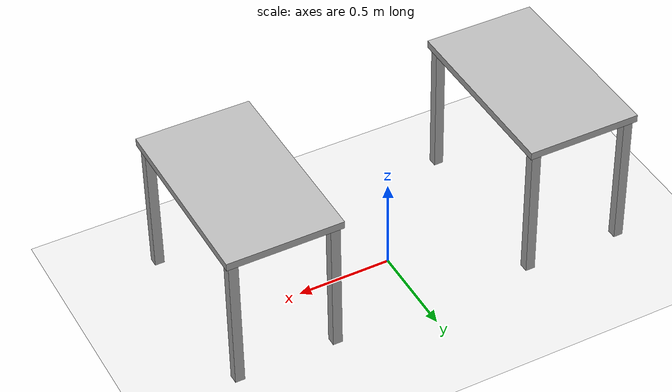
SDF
<?xml version="1.0" ?>
<sdf version="1.8">
  <world name="dualarm_world">
    <!-- Inline directional light ("sun") -->
    <light name="sun" type="directional">
      <cast_shadows>true</cast_shadows>
      <pose>0 0 10 0 0 0</pose>
      <diffuse>1 1 1 1</diffuse>
      <specular>0.2 0.2 0.2 1</specular>
      <attenuation><range>100</range><constant>0.9</constant><linear>0.01</linear><quadratic>0.001</quadratic></attenuation>
      <direction>-0.5 0.2 -1</direction>
    </light>

    <!-- Inline ground plane (white) -->
    <model name="ground_plane">
      <static>true</static>
      <link name="link">
        <collision name="collision">
          <geometry><plane><normal>0 0 1</normal><size>50 50</size></plane></geometry>
          <surface><friction><ode><mu>1.0</mu><mu2>1.0</mu2></ode></friction></surface>
        </collision>
        <visual name="visual">
          <geometry><plane><normal>0 0 1</normal><size>50 50</size></plane></geometry>
          <material><ambient>0.92 0.92 0.92 1</ambient><diffuse>0.92 0.92 0.92 1</diffuse></material>
        </visual>
      </link>
    </model>

    <!-- Tables: long side faces the other table (yaw = 90°), top @ z=0.80 -->
    <model name="table_A">
      <static>true</static>
      <pose>-0.80 0 0 0 0 1.5708</pose>
            <!-- Table top (1.00 x 0.60 x 0.04) at z=0.86 -->
      <link name="table_A_top">
        <pose>0 0 0.86  0 0 0</pose>
        <collision name="col"><geometry><box><size>1.00 0.60 0.04</size></box></geometry></collision>
        <visual    name="vis"><geometry><box><size>1.00 0.60 0.04</size></box></geometry></visual>
      </link>

      <!-- Leg size & math -->
      <!-- H_leg = 0.74, T_top = 0.04  → leg z offset = -(T_top/2 + H_leg/2) = -0.39  -->

      <link name="table_A_leg_fl">
        <pose relative_to="table_A_top">  0.46   0.26  -0.39  0 0 0</pose>
        <collision name="col"><geometry><box><size>0.05 0.05 0.74</size></box></geometry></collision>
        <visual    name="vis"><geometry><box><size>0.05 0.05 0.74</size></box></geometry></visual>
      </link>
      <link name="table_A_leg_fr">
        <pose relative_to="table_A_top">  0.46  -0.26  -0.39  0 0 0</pose>
        <collision name="col"><geometry><box><size>0.05 0.05 0.74</size></box></geometry></collision>
        <visual    name="vis"><geometry><box><size>0.05 0.05 0.74</size></box></geometry></visual>
      </link>
      <link name="table_A_leg_rl">
        <pose relative_to="table_A_top"> -0.46   0.26  -0.39  0 0 0</pose>
        <collision name="col"><geometry><box><size>0.05 0.05 0.74</size></box></geometry></collision>
        <visual    name="vis"><geometry><box><size>0.05 0.05 0.74</size></box></geometry></visual>
      </link>
      <link name="table_A_leg_rr">
        <pose relative_to="table_A_top"> -0.46  -0.26  -0.39  0 0 0</pose>
        <collision name="col"><geometry><box><size>0.05 0.05 0.74</size></box></geometry></collision>
        <visual    name="vis"><geometry><box><size>0.05 0.05 0.74</size></box></geometry></visual>
      </link>

    </model>

    <model name="table_B">
      <static>true</static>
      <pose>0.80 0 0 0 0 -1.5708</pose>
      <!-- Table top (1.00 x 0.60 x 0.04) at z=0.86 -->
      <link name="table_B_top">
        <pose>0 0 0.86  0 0 0</pose>
        <collision name="col"><geometry><box><size>1.00 0.60 0.04</size></box></geometry></collision>
        <visual    name="vis"><geometry><box><size>1.00 0.60 0.04</size></box></geometry></visual>
      </link>

      <!-- Leg size & math -->
      <!-- H_leg = 0.74, T_top = 0.04  → leg z offset = -(T_top/2 + H_leg/2) = -0.39  -->
      <link name="table_B_leg_fl">
        <pose relative_to="table_B_top">  0.46   0.26  -0.39  0 0 0</pose>
        <collision name="col"><geometry><box><size>0.05 0.05 0.74</size></box></geometry></collision>
        <visual    name="vis"><geometry><box><size>0.05 0.05 0.74</size></box></geometry></visual>
      </link>
      <link name="table_B_leg_fr">
        <pose relative_to="table_B_top">  0.46  -0.26  -0.39  0 0 0</pose>
        <collision name="col"><geometry><box><size>0.05 0.05 0.74</size></box></geometry></collision>
        <visual    name="vis"><geometry><box><size>0.05 0.05 0.74</size></box></geometry></visual>
      </link>
      <link name="table_B_leg_rl">
        <pose relative_to="table_B_top"> -0.46   0.26  -0.39  0 0 0</pose>
        <collision name="col"><geometry><box><size>0.05 0.05 0.74</size></box></geometry></collision>
        <visual    name="vis"><geometry><box><size>0.05 0.05 0.74</size></box></geometry></visual>
      </link>
      <link name="table_B_leg_rr">
        <pose relative_to="table_B_top"> -0.46  -0.26  -0.39  0 0 0</pose>
        <collision name="col"><geometry><box><size>0.05 0.05 0.74</size></box></geometry></collision>
        <visual    name="vis"><geometry><box><size>0.05 0.05 0.74</size></box></geometry></visual>
      </link>
    </model>

    <!-- Fix Panda base to Table A top -->
    <joint name="fix_panda_to_tableA" type="fixed">
      <parent>table_A::table_A_top</parent>
      <child>panda_arm::panda_link0</child>
    </joint>

    <!-- Fix UR base to Table B top -->
    <joint name="fix_ur_to_tableB" type="fixed">
      <parent>table_B::table_B_top</parent>
      <child>ur_arm::base_link</child>
    </joint>

  </world>
</sdf>
